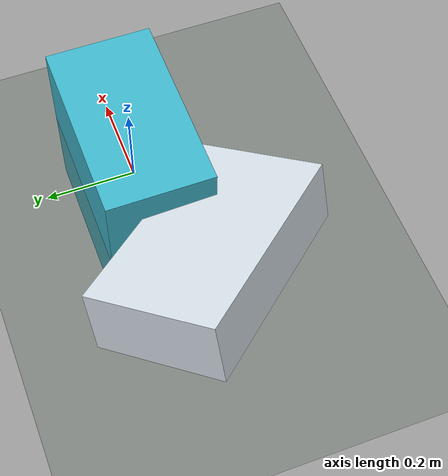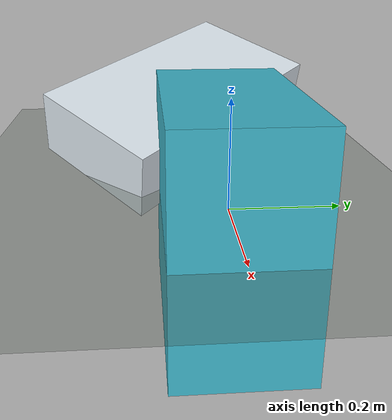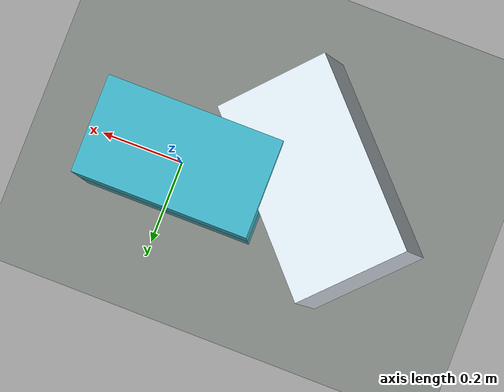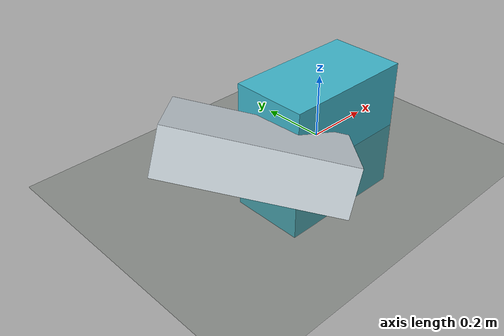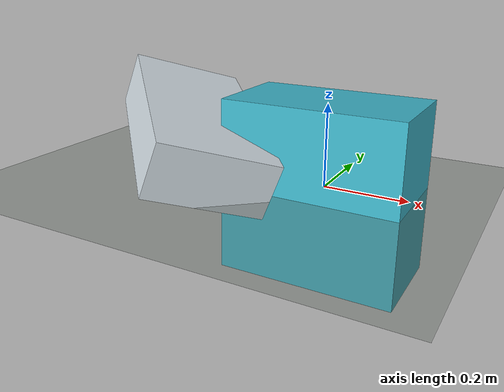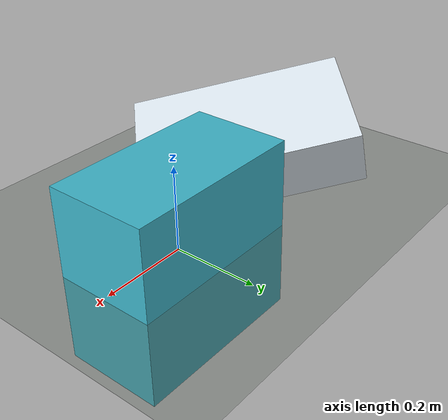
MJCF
<mujoco model="criatura">
  <compiler angle="degree" autolimits="true"/>
  <option timestep="0.002083" gravity="0 0 -9.81" integrator="implicitfast"/>
  <default>
    <geom type="box" density="300.0" rgba="0.85 0.89 0.92 1"/>
    <joint type="hinge"/>
    <motor ctrlrange="-1 1"/>
  </default>
  <worldbody>
    <geom name="suelo" type="plane" size="0 0 1" friction="1 0.005 0.0001" rgba="0.3 0.35 0.3 1"/>
    <body name="p0_n0" pos="0.00000 0.00000 0.00000" quat="1.000000 0.000000 0.000000 0.000000">
      <freejoint name="raiz"/>
      <geom name="g_p0_n0" size="0.21271 0.11831 0.21058" rgba="0.25 0.72 0.8 1"/>
      <body name="p1_n1" pos="-0.32174 -0.06803 0.11132" quat="-0.169557 -0.369594 0.912366 0.047307">
        <joint name="p1_n1_j0" axis="1.0000 0.0000 0.0000" pos="-0.16290 0 0" range="-68.51 68.51" damping="1.0507"/>
        <joint name="p1_n1_j1" axis="0.0000 0.0000 1.0000" pos="-0.16290 0 0" range="-68.51 68.51" damping="1.0507"/>
        <geom name="g_p1_n1" size="0.14290 0.25250 0.06935"/>
      </body>
    </body>
  </worldbody>
  <actuator>
    <motor name="m_p1_n1_j0" joint="p1_n1_j0" gear="21.0147"/>
    <motor name="m_p1_n1_j1" joint="p1_n1_j1" gear="21.0147"/>
  </actuator>
</mujoco>
